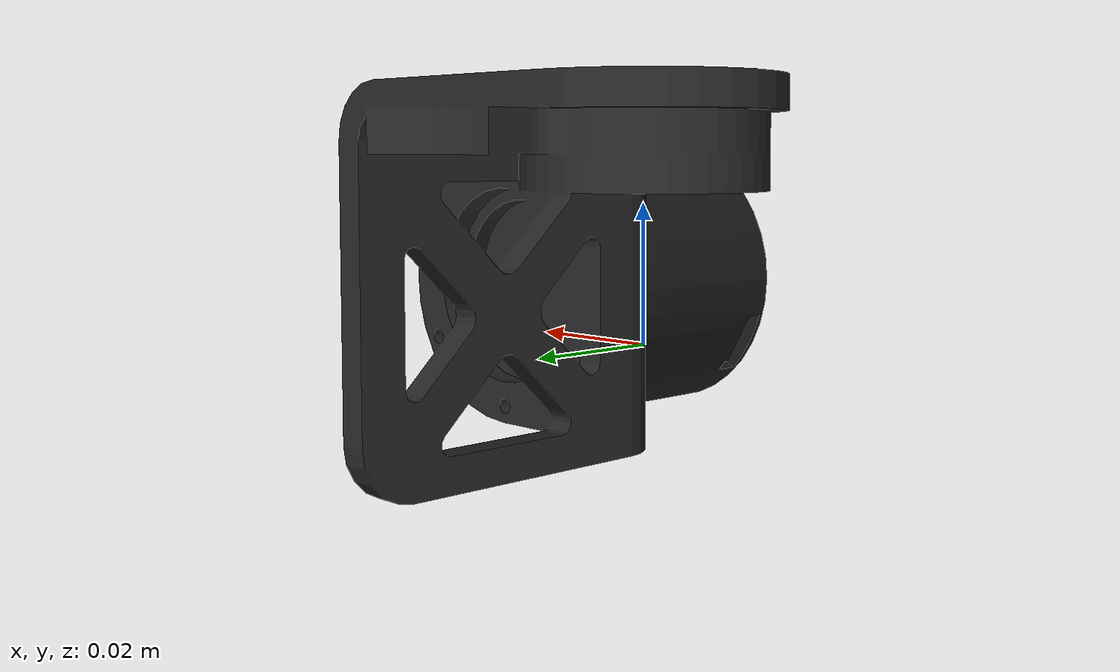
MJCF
<mujoco model="link4">
  <default>
    <default class="visual">
      <geom group="2" type="mesh" contype="0" conaffinity="0"/>
    </default>
    <default class="collision">
      <geom group="3" type="mesh"/>
    </default>
  </default>
  <asset>
    <material name="black_shell" specular="0.5" shininess="0.0" rgba="0.150000 0.150000 0.150000 1.000000"/>
    <material name="motor.002" specular="0.5" shininess="0.25" rgba="0.100000 0.100000 0.100000 1.000000"/>
    <mesh file="link4_0.obj"/>
    <mesh file="link4_1.obj"/>
    <mesh file="link4_collision_0.obj"/>
    <mesh file="link4_collision_1.obj"/>
    <mesh file="link4_collision_2.obj"/>
  </asset>
  <worldbody>
    <body name="link4">
      <geom mesh="link4_0" material="motor.002" class="visual"/>
      <geom mesh="link4_1" material="black_shell" class="visual"/>
      <geom mesh="link4_collision_0" rgba="0.38755650022468624 0.17733034500278466 0.9262044075552098 1" class="collision"/>
      <geom mesh="link4_collision_1" rgba="0.8285616292202971 0.6349763515184513 0.6750475624727845 1" class="collision"/>
      <geom mesh="link4_collision_2" rgba="0.5871093185224119 0.8602577316999936 0.8440924792927177 1" class="collision"/>
    </body>
  </worldbody>
</mujoco>
